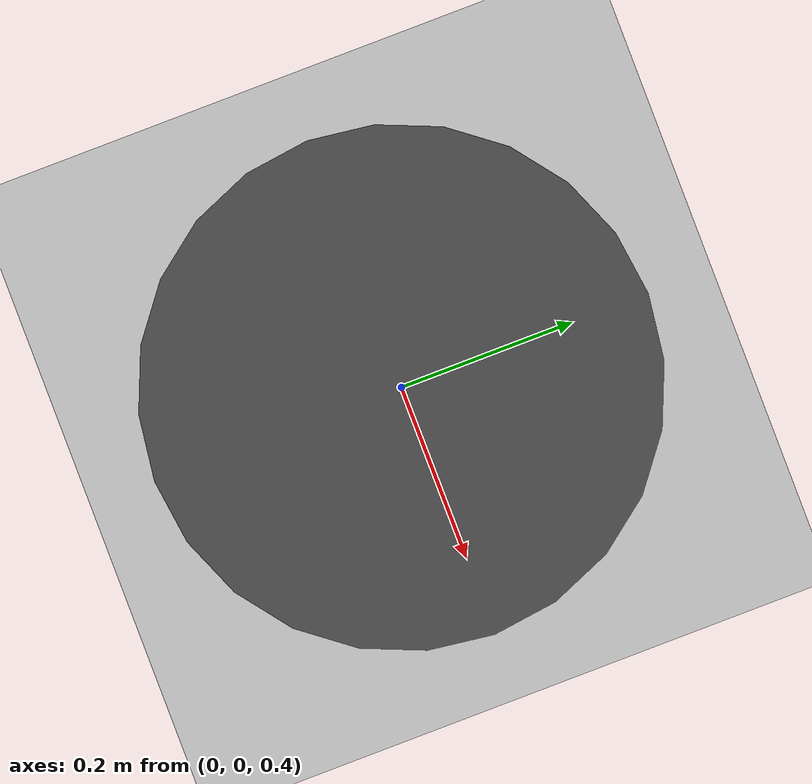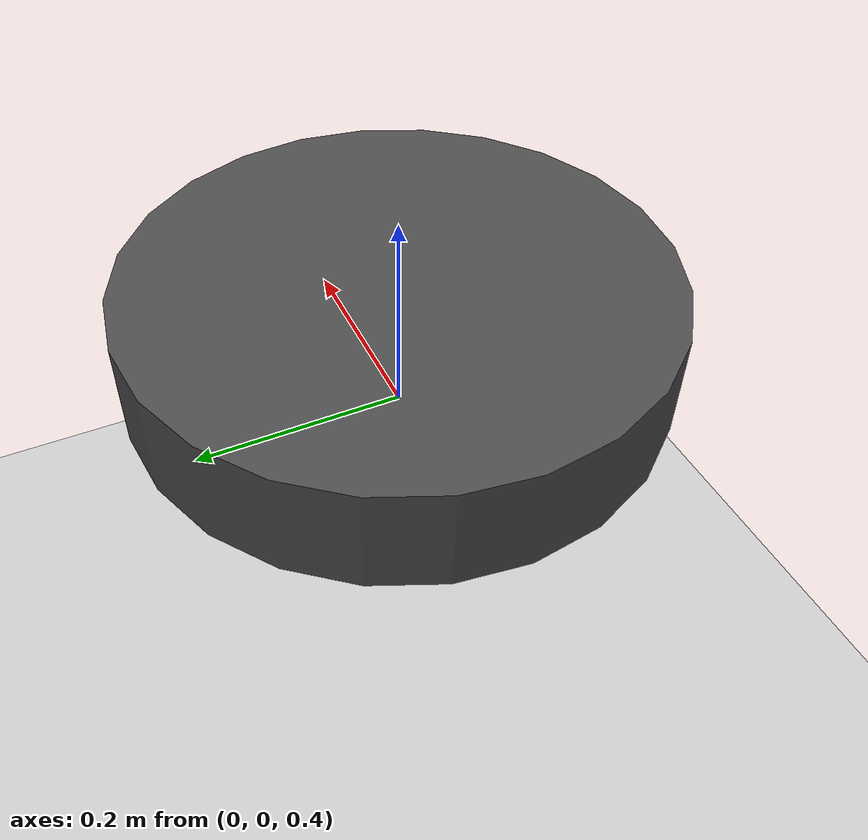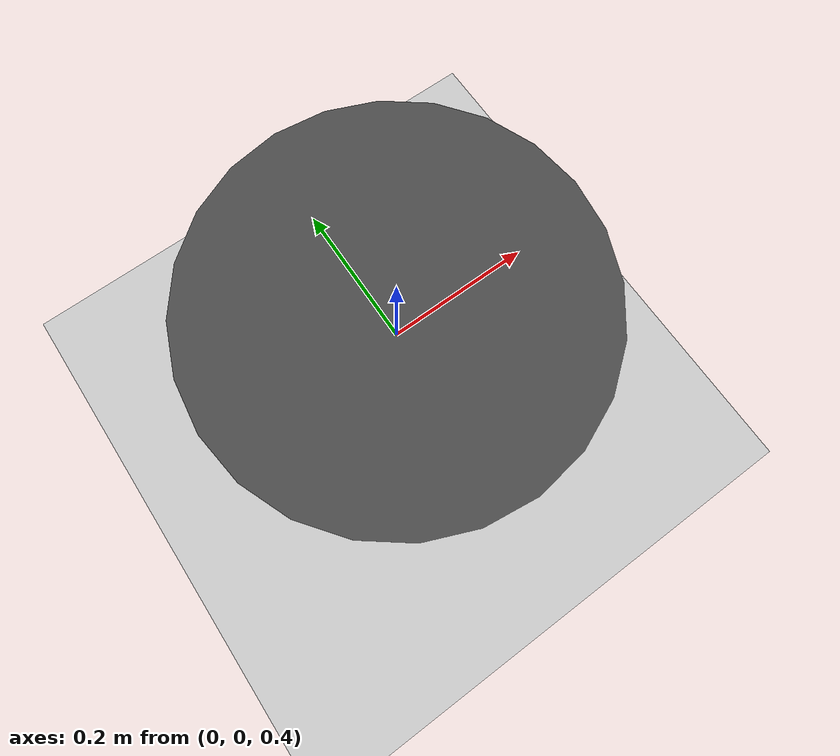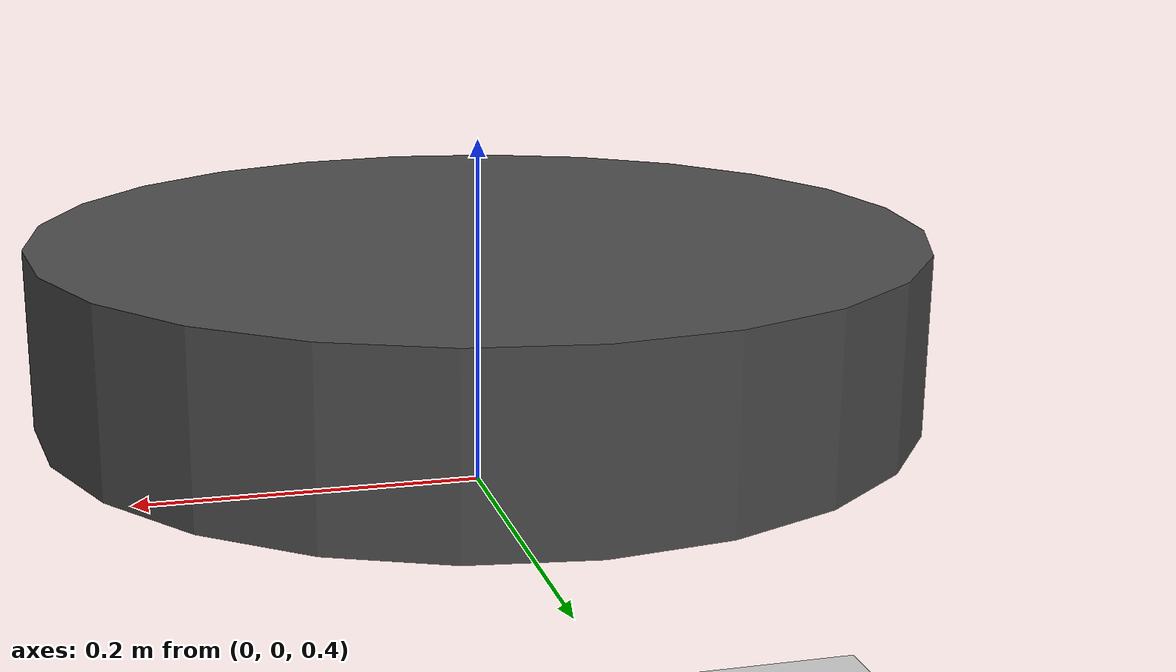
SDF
<?xml version="1.0" ?>
<sdf version="1.6">
    <world name="default">

        <include>
            <uri>model://sun</uri>
        </include>

        <include>
            <uri>model://ground_plane</uri>
        </include>

        <include>
            <uri>model://car/car_wheel</uri>
            <pose> 0 0 0.5 1.5729 0 0 </pose>
        </include>

    </world>
</sdf>

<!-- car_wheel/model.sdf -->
<sdf version='1.7'>
    <model name='car_wheel'>
        <link name='link'>
            <inertial>
                <mass>1.0</mass>
                <inertia>
                    <ixx>0.0045</ixx>
                    <iyy>0.005</iyy>
                    <izz>0.0045</izz>
                </inertia>
                <pose>0 0 0 0 -0 0</pose>
            </inertial>
            <self_collide>0</self_collide>
            <enable_wind>0</enable_wind>
            <kinematic>0</kinematic>
            <pose>0 0 0 1.5729 -0 0</pose>
            <gravity>1</gravity>
            <visual name='visual'>
                <material>
                    <diffuse> 0.3 0.3 0.3 1 </diffuse>
                    <specular> 0 0.2 0.2 1  </specular>
                    <emissive> 0 0 0 1 </emissive>
                    <ambient> 0.1 0.1 0.1 1 </ambient>
                </material>
                <geometry>
                    <cylinder>
                        <radius>0.25</radius>
                        <length>0.1</length>
                    </cylinder>
                </geometry>
                <pose>0 0 0 0 -0 0</pose>
                <transparency>0</transparency>
                <cast_shadows>1</cast_shadows>
            </visual>
            <collision name='collision'>
                <pose>0 0 0 0 -0 0</pose>
                <geometry>
                    <cylinder>
                        <radius>0.25</radius>
                        <length>0.1</length>
                    </cylinder>
                </geometry>
            </collision>
        </link>
        <static>0</static>
    </model>
</sdf>
